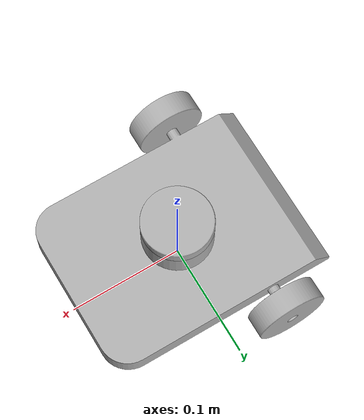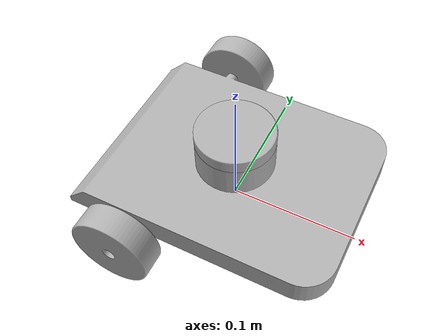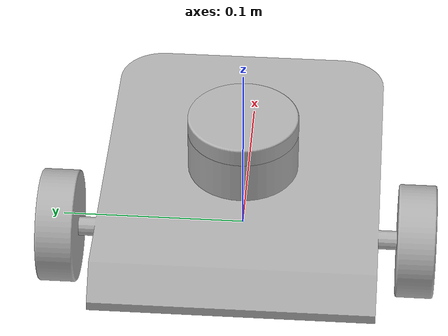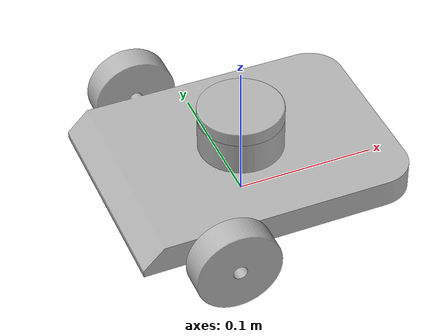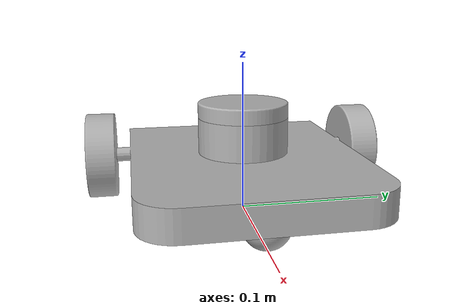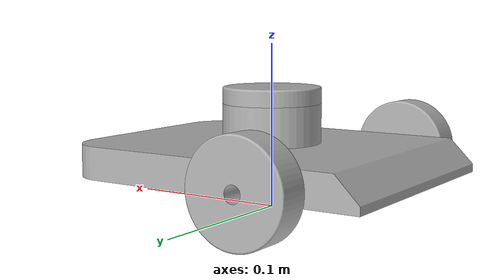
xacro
<?xml version="1.0" ?>
<robot name="wheel" xmlns:xacro="http://www.ros.org/wiki/xacro">

<xacro:include filename="$(find wheel_description)/urdf/materials.xacro" />
<xacro:include filename="$(find wheel_description)/urdf/wheel.trans" />
<xacro:include filename="$(find wheel_description)/urdf/wheel.gazebo" />
<link name="base_link">
  <inertial>
    <origin xyz="0.0016437410497119299 1.4043869349075475e-17 0.03217493603608752" rpy="0 0 0"/>
    <mass value="5.083736704932741"/>
    <inertia ixx="0.009003" iyy="0.014696" izz="0.022878" ixy="0.0" iyz="-0.0" ixz="-4.4e-05"/>
  </inertial>
  <visual>
    <origin xyz="0 0 0" rpy="0 0 0"/>
    <geometry>
      <mesh filename="package://wheel_description/meshes/base_link.stl" scale="0.001 0.001 0.001"/>
    </geometry>
    <material name="silver"/>
  </visual>
  <collision>
    <origin xyz="0 0 0" rpy="0 0 0"/>
    <geometry>
      <mesh filename="package://wheel_description/meshes/base_link.stl" scale="0.001 0.001 0.001"/>
    </geometry>
  </collision>
</link>

<link name="right_wheel_1">
  <inertial>
    <origin xyz="-1.4960255256823984e-14 -0.010000000000000009 0.0" rpy="0 0 0"/>
    <mass value="0.43094593095689254"/>
    <inertia ixx="0.000114" iyy="0.000199" izz="0.000114" ixy="0.0" iyz="-0.0" ixz="-0.0"/>
  </inertial>
  <visual>
    <origin xyz="0.045 0.085 -0.03" rpy="0 0 0"/>
    <geometry>
      <mesh filename="package://wheel_description/meshes/right_wheel_1.stl" scale="0.001 0.001 0.001"/>
    </geometry>
    <material name="silver"/>
  </visual>
  <collision>
    <origin xyz="0.045 0.085 -0.03" rpy="0 0 0"/>
    <geometry>
      <mesh filename="package://wheel_description/meshes/right_wheel_1.stl" scale="0.001 0.001 0.001"/>
    </geometry>
  </collision>
</link>

<link name="left_wheel_1">
  <inertial>
    <origin xyz="-1.494637746901617e-14 0.009999999999999995 6.938893903907228e-18" rpy="0 0 0"/>
    <mass value="0.43094593095689276"/>
    <inertia ixx="0.000114" iyy="0.000199" izz="0.000114" ixy="0.0" iyz="0.0" ixz="0.0"/>
  </inertial>
  <visual>
    <origin xyz="0.045 -0.085 -0.03" rpy="0 0 0"/>
    <geometry>
      <mesh filename="package://wheel_description/meshes/left_wheel_1.stl" scale="0.001 0.001 0.001"/>
    </geometry>
    <material name="silver"/>
  </visual>
  <collision>
    <origin xyz="0.045 -0.085 -0.03" rpy="0 0 0"/>
    <geometry>
      <mesh filename="package://wheel_description/meshes/left_wheel_1.stl" scale="0.001 0.001 0.001"/>
    </geometry>
  </collision>
</link>

<link name="caster_1">
  <inertial>
    <origin xyz="-0.030000000000000013 -1.67535390628531e-18 -0.00791666666666667" rpy="0 0 0"/>
    <mass value="0.08323257036604455"/>
    <inertia ixx="6e-06" iyy="6e-06" izz="8e-06" ixy="-0.0" iyz="-0.0" ixz="-0.0"/>
  </inertial>
  <visual>
    <origin xyz="-0.1 0.0 -0.02" rpy="0 0 0"/>
    <geometry>
      <mesh filename="package://wheel_description/meshes/caster_1.stl" scale="0.001 0.001 0.001"/>
    </geometry>
    <material name="silver"/>
  </visual>
  <collision>
    <origin xyz="-0.1 0.0 -0.02" rpy="0 0 0"/>
    <geometry>
      <mesh filename="package://wheel_description/meshes/caster_1.stl" scale="0.001 0.001 0.001"/>
    </geometry>
  </collision>
</link>

<link name="lidar_1">
  <inertial>
    <origin xyz="5.0332090097883615e-18 5.0332090097883615e-18 0.004993208397288507" rpy="0 0 0"/>
    <mass value="0.2216383410611165"/>
    <inertia ixx="5.2e-05" iyy="5.2e-05" izz="0.0001" ixy="0.0" iyz="0.0" ixz="0.0"/>
  </inertial>
  <visual>
    <origin xyz="-0.0 -0.0 -0.064" rpy="0 0 0"/>
    <geometry>
      <mesh filename="package://wheel_description/meshes/lidar_1.stl" scale="0.001 0.001 0.001"/>
    </geometry>
    <material name="silver"/>
  </visual>
  <collision>
    <origin xyz="-0.0 -0.0 -0.064" rpy="0 0 0"/>
    <geometry>
      <mesh filename="package://wheel_description/meshes/lidar_1.stl" scale="0.001 0.001 0.001"/>
    </geometry>
  </collision>
</link>

<joint name="right_wheel_joint" type="continuous">
  <origin xyz="-0.045 -0.085 0.03" rpy="0 0 0"/>
  <parent link="base_link"/>
  <child link="right_wheel_1"/>
  <axis xyz="0.0 1.0 0.0"/>
</joint>

<joint name="left_wheel_joint" type="continuous">
  <origin xyz="-0.045 0.085 0.03" rpy="0 0 0"/>
  <parent link="base_link"/>
  <child link="left_wheel_1"/>
  <axis xyz="0.0 1.0 0.0"/>
</joint>

<joint name="caster_joint" type="fixed">
  <origin xyz="0.1 0.0 0.02" rpy="0 0 0"/>
  <parent link="base_link"/>
  <child link="caster_1"/>
</joint>

<joint name="lidar_joint" type="fixed">
  <origin xyz="0.0 0.0 0.064" rpy="0 0 0"/>
  <parent link="base_link"/>
  <child link="lidar_1"/>
</joint>

</robot>

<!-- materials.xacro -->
<robot name="wheel" xmlns:xacro="http://www.ros.org/wiki/xacro" >

<material name="silver">
  <color rgba="0.700 0.700 0.700 1.000"/>
</material>

</robot>

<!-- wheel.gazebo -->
<robot name="wheel" xmlns:xacro="http://www.ros.org/wiki/xacro" >

<xacro:property name="body_color" value="Gazebo/Silver" />
<xacro:property name="body_color1" value="Gazebo/Black" />

<gazebo>
  <plugin name="control" filename="libgazebo_ros_control.so"/>
</gazebo>
<gazebo reference="base_link">
  <material>${body_color}</material>
  <mu1>0.2</mu1>
  <mu2>0.2</mu2>
  <selfCollide>true</selfCollide>
  <gravity>true</gravity>
</gazebo>

<gazebo reference="right_wheel_1">
  <material>${body_color}</material>
  <mu1>0.2</mu1>
  <mu2>0.2</mu2>
  <selfCollide>true</selfCollide>
</gazebo>

<gazebo reference="left_wheel_1">
  <material>${body_color}</material>
  <mu1>0.2</mu1>
  <mu2>0.2</mu2>
  <selfCollide>true</selfCollide>
</gazebo>

<gazebo reference="caster_1">
  <material>${body_color}</material>
  <mu1>0.2</mu1>
  <mu2>0.2</mu2>
  <selfCollide>true</selfCollide>
</gazebo>

<gazebo reference="lidar_1">
  <material>${body_color}</material>
  <mu1>0.2</mu1>
  <mu2>0.2</mu2>
  <selfCollide>true</selfCollide>
</gazebo>

<gazebo>
  <plugin name="differential_drive_controller" filename="libgazebo_ros_diff_drive.so">

    <!-- Plugin update rate in Hz -->
    <updateRate>10</updateRate>

    <!-- Name of left joint, defaults to `left_joint` -->
    <leftJoint>left_wheel_joint</leftJoint>

    <!-- Name of right joint, defaults to `right_joint` -->
    <rightJoint>right_wheel_joint</rightJoint>

    <!-- The distance from the center of one wheel to the other, in meters, defaults to 0.34 m -->
    <wheelSeparation>0.5380</wheelSeparation>

    <!-- Diameter of the wheels, in meters, defaults to 0.15 m -->
    <wheelDiameter>0.2410</wheelDiameter>

    <!-- Wheel acceleration, in rad/s^2, defaults to 0.0 rad/s^2 -->
    <wheelAcceleration>1.0</wheelAcceleration>

    <!-- Maximum torque which the wheels can produce, in Nm, defaults to 5 Nm -->
    <wheelTorque>20</wheelTorque>

    <!-- Topic to receive geometry_msgs/Twist message commands, defaults to `cmd_vel` -->
    <commandTopic>cmd_vel</commandTopic>

    <!-- Topic to publish nav_msgs/Odometry messages, defaults to `odom` -->
    <odometryTopic>odom</odometryTopic>

    <!-- Odometry frame, defaults to `odom` -->
    <odometryFrame>odom</odometryFrame>

    <!-- Robot frame to calculate odometry from, defaults to `base_footprint` -->
    <robotBaseFrame>base_link</robotBaseFrame>

    <!-- Odometry source, 0 for ENCODER, 1 for WORLD, defaults to WORLD -->
    <odometrySource>1</odometrySource>

    <!-- Set to true to publish transforms for the wheel links, defaults to false -->
    <publishWheelTF>true</publishWheelTF>

    <!-- Set to true to publish transforms for the odometry, defaults to true -->
    <publishOdom>true</publishOdom>

    <!-- Set to true to publish sensor_msgs/JointState on /joint_states for the wheel joints, defaults to false -->
    <publishWheelJointState>true</publishWheelJointState>

    <!-- Set to true to swap right and left wheels, defaults to true -->
    <legacyMode>false</legacyMode>
  </plugin>
</gazebo>

<gazebo reference="lidar_1">
    <sensor type="ray" name="sen_lidar">
      <pose>0 0 0 0 0 0</pose>
      <visualize>false</visualize>
      <update_rate>40</update_rate>
      <ray>
        <scan>
          <horizontal>
            <samples>720</samples>
            <resolution>1</resolution>
            <min_angle>-1.57</min_angle>
            <max_angle>1.57</max_angle>
          </horizontal>
        </scan>
        <range>
          <min>0.10</min>
          <max>30.0</max>
          <resolution>0.01</resolution>
        </range>
        <noise>
          <type>gaussian</type>
          <mean>0.0</mean>
          <stddev>0.01</stddev>
        </noise>
      </ray>
      <plugin name="gazebo_ros_head_hokuyo_controller" filename="libgazebo_ros_laser.so">
        <topicName>/scan</topicName>
        <frameName>lidar_1</frameName>
      </plugin>
    </sensor>
  </gazebo>

</robot>
